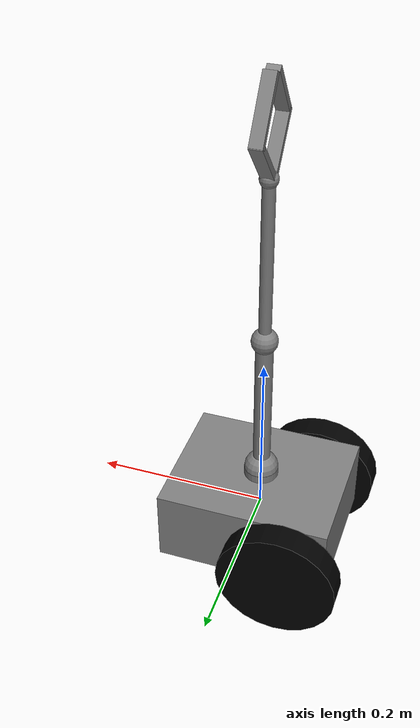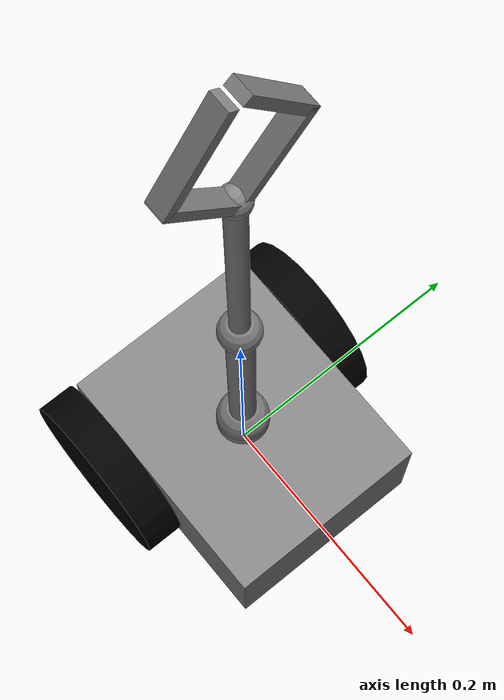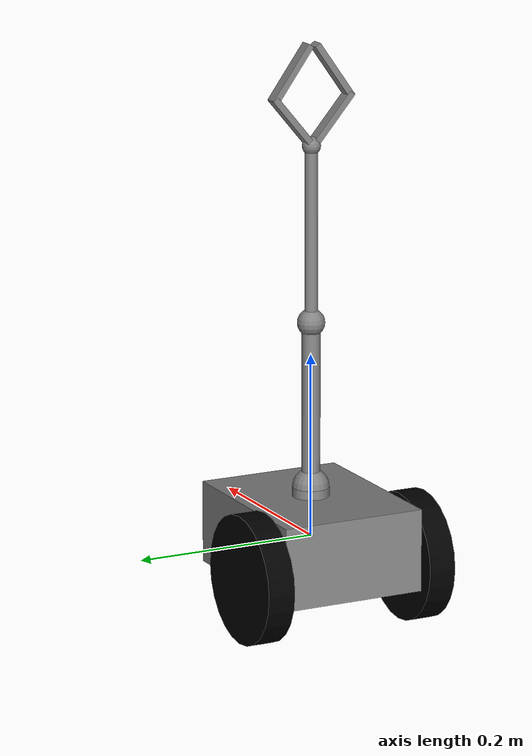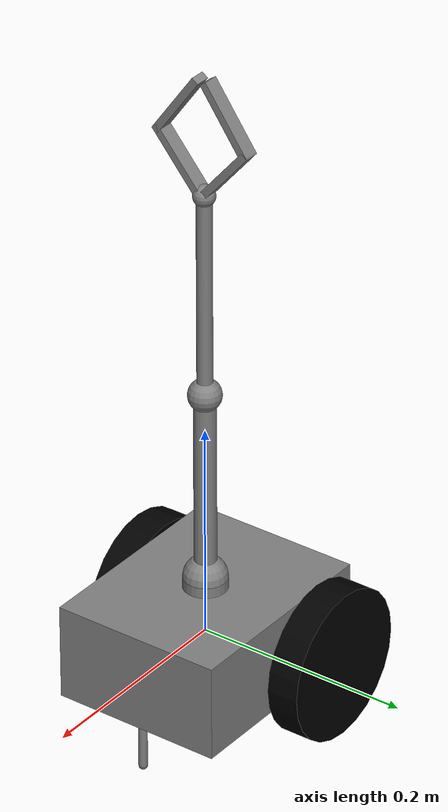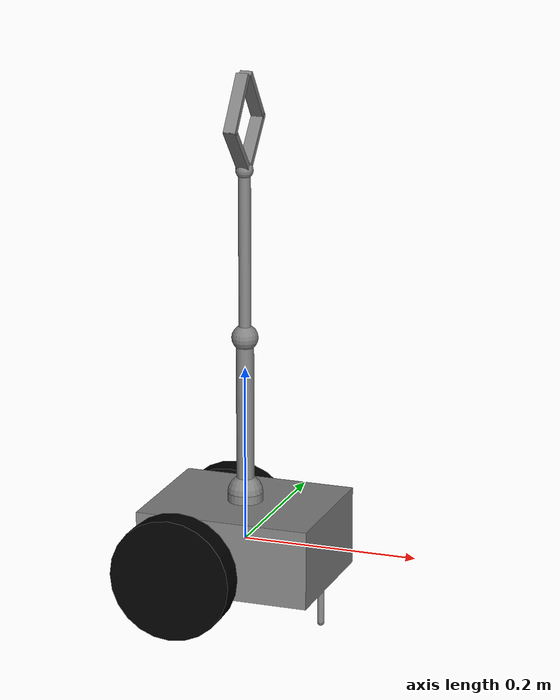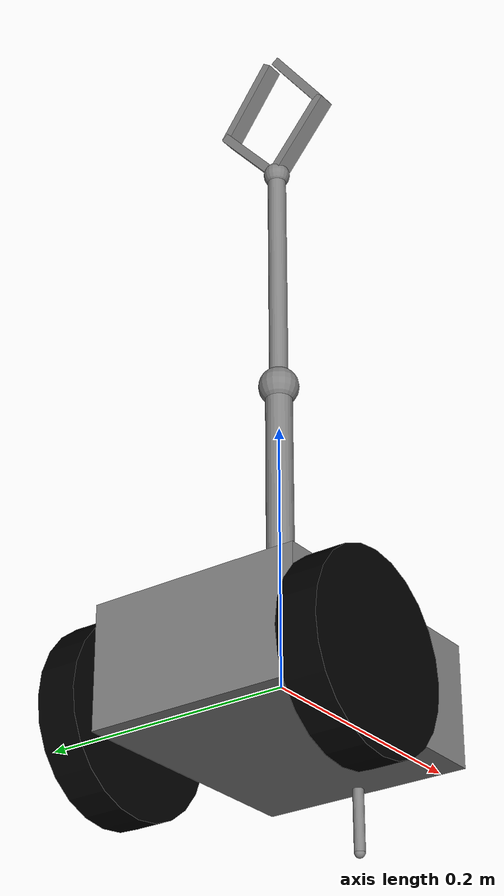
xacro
<robot name="my_robots_super_model">

<material name="gray">
    <color rgba="0.5 0.5 0.5 1"/>
</material>

<material name="black">
    <color rgba="0 0 0 1"/>
</material>

    <link name="base_link"/>

    <link name="platform">
        <visual>
            <geometry>
                <box size="0.2 0.16 0.09"/>
            </geometry>
            <material name="gray"/>
        </visual>
        <collision>
            <geometry>
                <box size="0.2 0.16 0.09"/>
            </geometry>
        </collision>
        <inertial>
            <mass value="7"/>
            <inertia ixx="100" ixy="0" ixz="0" iyy="100" iyz="0" izz="100" />
        </inertial>
    </link>

    <link name="lower_link">
        <visual>
            <geometry>
                <cylinder radius="0.004" length="0.05"/>
            </geometry>
            <material name="gray"/>
        </visual>
        <collision>
            <geometry>
                <cylinder radius="0.004" length="0.05"/>
            </geometry>
        </collision>
        <inertial>
            <mass value="0.05"/>
            <inertia ixx="100" ixy="0" ixz="0" iyy="100" iyz="0" izz="100" />
        </inertial>
    </link>

    <link name="lower_sphere">
        <visual>
            <geometry>
                <sphere radius="0.004"/>
            </geometry>
            <material name="gray"/>
        </visual>
        <collision>
            <geometry>
                <sphere radius="0.004"/>
            </geometry>
        </collision>
        <inertial>
            <mass value="0.1"/>
            <inertia ixx="100" ixy="0" ixz="0" iyy="100" iyz="0" izz="100" />
        </inertial>
    </link>

    <link name="left_wheel">
        <visual>
            <geometry>
                <cylinder length="0.03" radius="0.07"/>
            </geometry>
            <origin rpy="0 1.57075 0" xyz="0 0 0"/>
            <material name="black"/>
        </visual>
        <collision>
            <geometry>
                <cylinder length="0.03" radius="0.07"/>
            </geometry>
            <origin rpy="0 1.57075 0" xyz="0 0 0"/>
        </collision>
        <inertial>
            <mass value="3"/>
            <inertia ixx="100" ixy="0" ixz="0" iyy="100" iyz="0" izz="100" />
        </inertial>
    </link>

    <link name="right_wheel">
        <visual>
            <geometry>
                <cylinder length="0.03" radius="0.07"/>
            </geometry>
            <origin rpy="0 1.57075 0" xyz="0 0 0"/>
            <material name="black"/>
        </visual>
        <collision>
            <geometry>
                <cylinder length="0.03" radius="0.07"/>
            </geometry>
            <origin rpy="0 1.57075 0" xyz="0 0 0"/>
        </collision>
        <inertial>
            <mass value="3"/>
            <inertia ixx="100" ixy="0" ixz="0" iyy="100" iyz="0" izz="100" />
        </inertial>
    </link>

    <link name="cyl_0">
        <visual>
            <geometry>
                <cylinder radius="0.02" length="0.01"/>
            </geometry>
            <material name="gray"/>
        </visual>
        <collision>
            <geometry>
                <cylinder radius="0.02" length="0.01"/>
            </geometry>
        </collision>
        <inertial>
            <mass value="1"/>
            <inertia ixx="100" ixy="0" ixz="0" iyy="100" iyz="0" izz="100" />
        </inertial>
    </link>

    <link name="sphere_0">
        <visual>
            <geometry>
                <sphere radius="0.02"/>
            </geometry>
            <material name="gray"/>
        </visual>
        <collision>
            <geometry>
                <sphere radius="0.02"/>
            </geometry>
        </collision>
        <inertial>
            <mass value="0.3"/>
            <inertia ixx="100" ixy="0" ixz="0" iyy="100" iyz="0" izz="100" />
        </inertial>
    </link>

    <link name="cyl_1">
        <visual>
            <geometry>
                <cylinder radius="0.01" length="0.18"/>
            </geometry>
            <origin xyz="0.0 0.0 0.1" rpy="0.0 0.0 0.0"/>
            <material name="gray"/>
        </visual>
        <collision>
            <geometry>
                <cylinder radius="0.1" length="0.18"/>
            </geometry>
            <origin xyz="0.0 0.0 0.1" rpy="0.0 0.0 0.0"/>
        </collision>
        <inertial>
            <mass value="1.5"/>
            <inertia ixx="100" ixy="0" ixz="0" iyy="100" iyz="0" izz="100" />
        </inertial>
    </link>

    <link name="sphere_1">
        <visual>
            <geometry>
                <sphere radius="0.015"/>
            </geometry>
            <material name="gray"/>
        </visual>
        <collision>
            <geometry>
                <sphere radius="0.015"/>
            </geometry>
        </collision>
        <inertial>
            <mass value="0.2"/>
            <inertia ixx="100" ixy="0" ixz="0" iyy="100" iyz="0" izz="100" />
        </inertial>
    </link>

    <link name="cyl_2">
        <visual>
            <geometry>
                <cylinder radius="0.007" length="0.18"/>
            </geometry>
            <origin xyz="0.0 0.0 0.1" rpy="0.0 0.0 0.0"/>
            <material name="gray"/>
        </visual>
        <collision>
            <geometry>
                <cylinder radius="0.007" length="0.18"/>
            </geometry>
            <origin xyz="0.0 0.0 0.1" rpy="0.0 0.0 0.0"/>
        </collision>
        <inertial>
            <mass value="1"/>
            <inertia ixx="100" ixy="0" ixz="0" iyy="100" iyz="0" izz="100" />
        </inertial>
    </link>

    <link name="sphere_2">
        <visual>
            <geometry>
                <sphere radius="0.01"/>
            </geometry>
            <material name="gray"/>
        </visual>
        <collision>
            <geometry>
                <sphere radius="0.01"/>
            </geometry>
        </collision>
        <inertial>
            <mass value="0.1"/>
            <inertia ixx="100" ixy="0" ixz="0" iyy="100" iyz="0" izz="100" />
        </inertial>
    </link>

    <link name="right_hand_0">
        <visual>
            <geometry>
                <box size="0.014 0.007 0.07"/>
            </geometry>
            <origin xyz="0.0 0.0 0.035" rpy="0.0 0.0 0.0"/>
            <material name="gray"/>
        </visual>
        <collision>
            <geometry>
                <box size="0.014 0.007 0.07"/>
            </geometry>
            <origin xyz="0.0 0.0 0.035" rpy="0.0 0.0 0.0"/>
        </collision>
        <inertial>
            <mass value="0.5"/>
            <inertia ixx="100" ixy="0" ixz="0" iyy="100" iyz="0" izz="100" />
        </inertial>
    </link>

    <link name="left_hand_0">
        <visual>
            <geometry>
                <box size="0.014 0.007 0.07"/>
            </geometry>
            <origin xyz="0.0 0.0 0.035" rpy="0.0 0.0 0.0"/>
            <material name="gray"/>
        </visual>
        <collision>
            <geometry>
                <box size="0.014 0.007 0.07"/>
            </geometry>
            <origin xyz="0.0 0.0 0.035" rpy="0.0 0.0 0.0"/>
        </collision>
        <inertial>
            <mass value="0.5"/>
            <inertia ixx="100" ixy="0" ixz="0" iyy="100" iyz="0" izz="100" />
        </inertial>
    </link>

    <link name="right_hand_1">
        <visual>
            <geometry>
                <box size="0.014 0.007 0.07"/>
            </geometry>
            <origin xyz="0.0 0.0 0.035" rpy="0.0 0.0 0.0"/>
            <material name="gray"/>
        </visual>
        <collision>
            <geometry>
                <box size="0.014 0.007 0.07"/>
            </geometry>
            <origin xyz="0.0 0.0 0.035" rpy="0.0 0.0 0.0"/>
        </collision>
        <inertial>
            <mass value="0.5"/>
            <inertia ixx="100" ixy="0" ixz="0" iyy="100" iyz="0" izz="100" />
        </inertial>
    </link>

    <link name="left_hand_1">
        <visual>
            <geometry>
                <box size="0.014 0.007 0.07"/>
            </geometry>
            <origin xyz="0.0 0.0 0.035" rpy="0.0 0.0 0.0"/>
            <material name="gray"/>
        </visual>
        <collision>
            <geometry>
                <box size="0.014 0.007 0.07"/>
            </geometry>
            <origin xyz="0.0 0.0 0.035" rpy="0.0 0.0 0.0"/>
        </collision>
        <inertial>
            <mass value="0.5"/>
            <inertia ixx="100" ixy="0" ixz="0" iyy="100" iyz="0" izz="100" />
        </inertial>
    </link>

    <joint name="base_joint" type="fixed">
        <parent link="base_link"/>
        <child link="platform"/>
        <origin rpy="0 0 0" xyz="0 0 0"/>
        <axis xyz="0.0 0.0 0.0"/>
    </joint>

    <joint name="platform_left_wheel_joint" type="continuous">
        <parent link="platform"/>
        <child link="left_wheel"/>
        <origin rpy="0 0 -1.57075" xyz="-0.05 -0.095 -0.02"/>
    </joint>

    <joint name="platform_right_wheel_joint" type="continuous">
        <parent link="platform"/>
        <child link="right_wheel"/>
        <origin rpy="0 0 1.57075" xyz="-0.05 0.095 -0.02"/>
    </joint>

    <joint name="lower_link_joint" type="fixed">
        <parent link="platform"/>
        <child link="lower_link"/>
        <origin rpy="0 0 0" xyz="0.09 0.0 -0.065"/>
    </joint>

    <joint name="lower_joint" type="fixed">
        <parent link="lower_link"/>
        <child link="lower_sphere"/>
        <origin xyz="0.0 0.0 -0.025" rpy="0.0 0.0 0.0"/>
    </joint>

    <joint name="platform_cyl_0_joint" type="fixed">
        <parent link="platform"/>
        <child link="cyl_0"/>
        <origin xyz="0.0 0.0 0.05" rpy="0.0 0.0 0.0"/>
    </joint>

    <joint name="cyl_0_sphere_0_joint" type="fixed">
        <parent link="cyl_0"/>
        <child link="sphere_0"/>
        <origin xyz="0.0 0.0 0.005" rpy="0.0 0.0 0.0"/>
    </joint>

    <joint name="sphere_0_cyl_1_joint" type="revolute">
        <parent link="sphere_0"/>
        <child link="cyl_1"/>
        <axis xyz="0 1 0"/>
        <limit lower="-1.57079" upper="1.57079" velocity="0.0" effort="10.0"/>
        <origin xyz="0 0 0" rpy="0 0 0"/>
    </joint>

    <joint name="cyl_1_sphere_1_joint" type="fixed">
        <parent link="cyl_1"/>
        <child link="sphere_1"/>
        <origin xyz="0.0 0.0 0.18" rpy="0.0 0.0 0.0"/>
    </joint>

    <joint name="sphere_1_cyl_2_joint" type="revolute">
        <parent link="sphere_1"/>
        <child link="cyl_2"/>
        <axis xyz="0 1 0"/>
        <limit lower="-1.57079" upper="1.57079" velocity="0.0" effort="10.0"/>
        <origin xyz="0 0 0" rpy="0 0 0"/>
    </joint>

    <joint name="cyl_2_sphere_2_joint" type="fixed">
        <parent link="cyl_2"/>
        <child link="sphere_2"/>
        <origin xyz="0.0 0.0 0.19" rpy="0.0 0.0 0.0"/>
    </joint>

    <joint name="sphere_2_right_hand_joint" type="revolute">
        <parent link="sphere_2"/>
        <child link="right_hand_0"/>
        <axis xyz="1 0 0"/>
        <limit lower="0.0" upper="1.3" velocity="0.0" effort="10.0"/>
        <origin xyz="0 0 0" rpy="0.7 0 0"/>
    </joint>

    <joint name="sphere_2_left_hand_joint" type="revolute">
        <parent link="sphere_2"/>
        <child link="left_hand_0"/>
        <axis xyz="1 0 0"/>
        <limit lower="0.0" upper="1.3" velocity="0.0" effort="10.0"/>
        <origin xyz="0 0 0" rpy="0.7 0 3.1416"/>
    </joint>

    <joint name="right_hand_middle_joint" type="fixed">
        <parent link="right_hand_0"/>
        <child link="right_hand_1"/>
        <origin xyz="0.0 -0.0018 0.067" rpy="-1.32 0.0 0.0"/>
    </joint>

    <joint name="left_hand_middle_joint" type="fixed">
        <parent link="left_hand_0"/>
        <child link="left_hand_1"/>
        <origin xyz="0.0 -0.0018 0.067" rpy="-1.32 0.0 0.0"/>
    </joint>

</robot>
